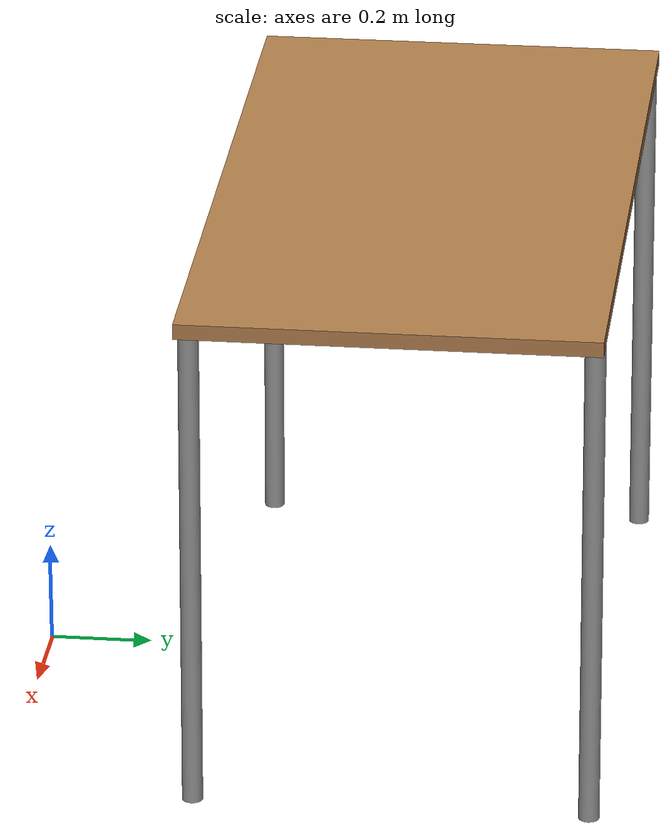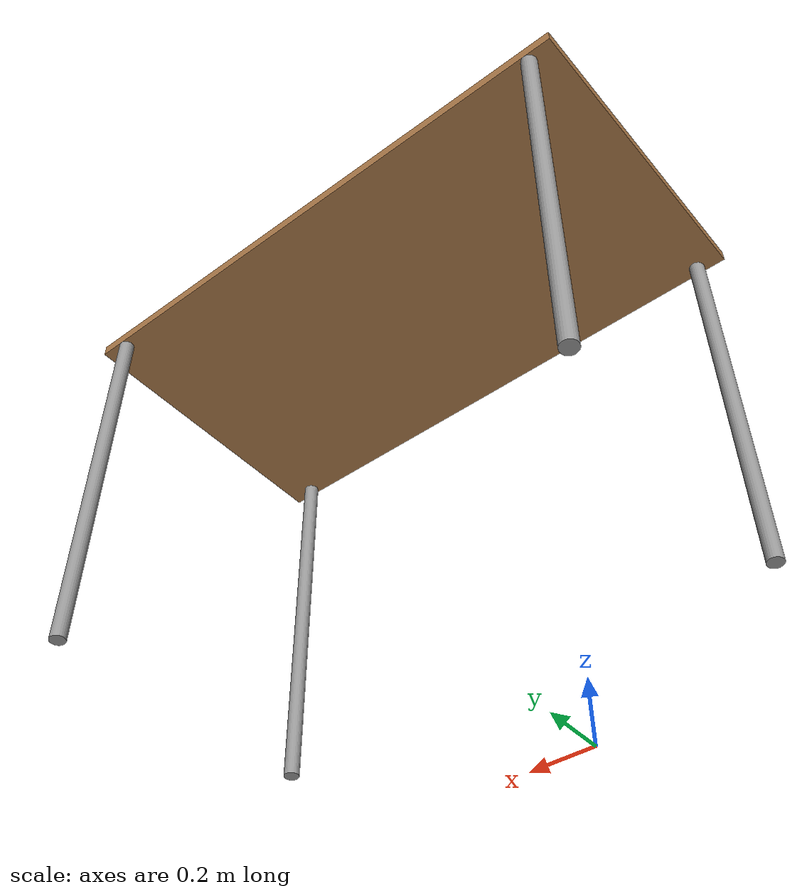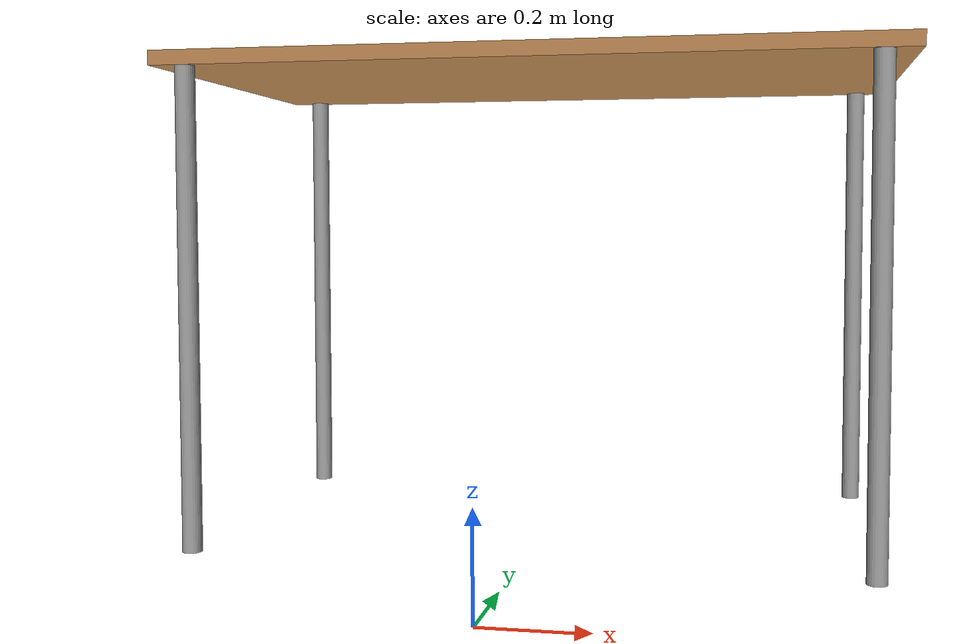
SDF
<?xml version='1.0'?>
<sdf version='1.5'>
  <model name='table'>

    <joint name="fixed_joint" type="fixed">
      <parent>world</parent>
      <child>link</child>
    </joint>

    <link name='link'>
      <pose frame=''>0 0.75 0 0 -0 0</pose>
      <self_collide>0</self_collide>
      <gravity>1</gravity>
      <inertial>
        <mass>1</mass>
        <pose frame=''>0 0 0 0 -0 0</pose>
        <inertia>
          <ixx>1</ixx>
          <ixy>0</ixy>
          <ixz>0</ixz>
          <iyy>1</iyy>
          <iyz>0</iyz>
          <izz>1</izz>
        </inertia>
      </inertial>
      <visual name='visual1'>
        <pose frame=''>0 0 1 0 -0 0</pose>
        <geometry>
          <box>
            <size>1.5 0.8 0.03</size>
          </box>
        </geometry>
        <material>
          <script>
            <uri>file://media/materials/scripts/gazebo.material</uri>
            <name>Gazebo/Wood</name>
          </script>
          <ambient>1 1 1 1</ambient>
          <diffuse>1 1 1 1</diffuse>
          <specular>0.2 0.2 0.2 1</specular>
          <emissive>0 0 0 1</emissive>
          <shader type='vertex'>
            <normal_map>__default__</normal_map>
          </shader>
        </material>
        <cast_shadows>1</cast_shadows>
        <transparency>0</transparency>
      </visual>
      <visual name='front_left_leg'>
        <pose frame=''>0.68 0.38 0.5 0 -0 0</pose>
        <geometry>
          <cylinder>
            <radius>0.02</radius>
            <length>1</length>
          </cylinder>
        </geometry>
        <material>
          <script>
            <uri>file://media/materials/scripts/gazebo.material</uri>
            <name>Gazebo/Grey</name>
          </script>
          <ambient>0.3 0.3 0.3 1</ambient>
          <diffuse>0.7 0.7 0.7 1</diffuse>
          <specular>0.01 0.01 0.01 1</specular>
          <emissive>0 0 0 1</emissive>
          <shader type='vertex'>
            <normal_map>__default__</normal_map>
          </shader>
        </material>
        <cast_shadows>1</cast_shadows>
        <transparency>0</transparency>
      </visual>
      <visual name='front_right_leg'>
        <pose frame=''>0.68 -0.38 0.5 0 -0 0</pose>
        <geometry>
          <cylinder>
            <radius>0.02</radius>
            <length>1</length>
          </cylinder>
        </geometry>
        <material>
          <script>
            <uri>file://media/materials/scripts/gazebo.material</uri>
            <name>Gazebo/Grey</name>
          </script>
          <ambient>0.3 0.3 0.3 1</ambient>
          <diffuse>0.7 0.7 0.7 1</diffuse>
          <specular>0.01 0.01 0.01 1</specular>
          <emissive>0 0 0 1</emissive>
          <shader type='vertex'>
            <normal_map>__default__</normal_map>
          </shader>
        </material>
        <cast_shadows>1</cast_shadows>
        <transparency>0</transparency>
      </visual>
      <visual name='back_right_leg'>
        <pose frame=''>-0.68 -0.38 0.5 0 -0 0</pose>
        <geometry>
          <cylinder>
            <radius>0.02</radius>
            <length>1</length>
          </cylinder>
        </geometry>
        <material>
          <script>
            <uri>file://media/materials/scripts/gazebo.material</uri>
            <name>Gazebo/Grey</name>
          </script>
          <ambient>0.3 0.3 0.3 1</ambient>
          <diffuse>0.7 0.7 0.7 1</diffuse>
          <specular>0.01 0.01 0.01 1</specular>
          <emissive>0 0 0 1</emissive>
          <shader type='vertex'>
            <normal_map>__default__</normal_map>
          </shader>
        </material>
        <cast_shadows>1</cast_shadows>
        <transparency>0</transparency>
      </visual>
      <visual name='back_left_leg'>
        <pose frame=''>-0.68 0.38 0.5 0 -0 0</pose>
        <geometry>
          <cylinder>
            <radius>0.02</radius>
            <length>1</length>
          </cylinder>
        </geometry>
        <material>
          <script>
            <uri>file://media/materials/scripts/gazebo.material</uri>
            <name>Gazebo/Grey</name>
          </script>
          <ambient>0.3 0.3 0.3 1</ambient>
          <diffuse>0.7 0.7 0.7 1</diffuse>
          <specular>0.01 0.01 0.01 1</specular>
          <emissive>0 0 0 1</emissive>
          <shader type='vertex'>
            <normal_map>__default__</normal_map>
          </shader>
        </material>
        <cast_shadows>1</cast_shadows>
        <transparency>0</transparency>
      </visual>
      <collision name='surface'>
        <laser_retro>0</laser_retro>
        <max_contacts>10</max_contacts>
        <pose frame=''>0 0 1 0 -0 0</pose>
        <geometry>
          <box>
            <size>1.5 0.8 0.03</size>
          </box>
        </geometry>
        <surface>
          <friction>
            <ode>
              <mu>0</mu>
              <mu2>0</mu2>
              <fdir1>0 0 0</fdir1>
             p <slip1>0</slip1>
              <slip2>0</slip2>
            </ode>
          </friction>
          <bounce>
            <restitution_coefficient>0</restitution_coefficient>
            <threshold>1e+06</threshold>
          </bounce>
          <contact>
            <collide_without_contact>0</collide_without_contact>
            <collide_without_contact_bitmask>1</collide_without_contact_bitmask>
            <collide_bitmask>1</collide_bitmask>
            <ode>
              <soft_cfm>0</soft_cfm>
              <soft_erp>0.2</soft_erp>
              <kp>10000</kp>
              <kd>1</kd>
              <max_vel>0.01</max_vel>
              <min_depth>0</min_depth>
            </ode>
            <bullet>
              <split_impulse>1</split_impulse>
              <split_impulse_penetration_threshold>-0.01</split_impulse_penetration_threshold>
              <soft_cfm>0</soft_cfm>
              <soft_erp>0.2</soft_erp>
              <kp>10000</kp>
              <kd>1</kd>
            </bullet>
          </contact>
        </surface>
      </collision>
      <collision name='front_left_leg_0'>
        <laser_retro>0</laser_retro>
        <max_contacts>10</max_contacts>
        <pose frame=''>0.68 0.38 0.5 0 -0 0</pose>
        <geometry>
          <cylinder>
            <radius>0.02</radius>
            <length>1</length>
          </cylinder>
        </geometry>
        <surface>
          <friction>
            <ode>
              <mu>1</mu>
              <mu2>1</mu2>
              <fdir1>0 0 0</fdir1>
              <slip1>0</slip1>
              <slip2>0</slip2>
            </ode>
          </friction>
          <bounce>
            <restitution_coefficient>0</restitution_coefficient>
            <threshold>1e+06</threshold>
          </bounce>
          <contact>
            <collide_without_contact>0</collide_without_contact>
            <collide_without_contact_bitmask>1</collide_without_contact_bitmask>
            <collide_bitmask>1</collide_bitmask>
            <ode>
              <soft_cfm>0</soft_cfm>
              <soft_erp>0.2</soft_erp>
              <kp>1e+13</kp>
              <kd>1</kd>
              <max_vel>0.01</max_vel>
              <min_depth>0</min_depth>
            </ode>
            <bullet>
              <split_impulse>1</split_impulse>
              <split_impulse_penetration_threshold>-0.01</split_impulse_penetration_threshold>
              <soft_cfm>0</soft_cfm>
              <soft_erp>0.2</soft_erp>
              <kp>1e+13</kp>
              <kd>1</kd>
            </bullet>
          </contact>
        </surface>
      </collision>
      <collision name='front_right_leg_0'>
        <laser_retro>0</laser_retro>
        <max_contacts>10</max_contacts>
        <pose frame=''>0.68 -0.38 0.5 0 -0 0</pose>
        <geometry>
          <cylinder>
            <radius>0.02</radius>
            <length>1</length>
          </cylinder>
        </geometry>
        <surface>
          <friction>
            <ode>
              <mu>1</mu>
              <mu2>1</mu2>
              <fdir1>0 0 0</fdir1>
              <slip1>0</slip1>
              <slip2>0</slip2>
            </ode>
          </friction>
          <bounce>
            <restitution_coefficient>0</restitution_coefficient>
            <threshold>1e+06</threshold>
          </bounce>
          <contact>
            <collide_without_contact>0</collide_without_contact>
            <collide_without_contact_bitmask>1</collide_without_contact_bitmask>
            <collide_bitmask>1</collide_bitmask>
            <ode>
              <soft_cfm>0</soft_cfm>
              <soft_erp>0.2</soft_erp>
              <kp>1e+13</kp>
              <kd>1</kd>
              <max_vel>0.01</max_vel>
              <min_depth>0</min_depth>
            </ode>
            <bullet>
              <split_impulse>1</split_impulse>
              <split_impulse_penetration_threshold>-0.01</split_impulse_penetration_threshold>
              <soft_cfm>0</soft_cfm>
              <soft_erp>0.2</soft_erp>
              <kp>1e+13</kp>
              <kd>1</kd>
            </bullet>
          </contact>
        </surface>
      </collision>
      <collision name='back_left_leg_0'>
        <laser_retro>0</laser_retro>
        <max_contacts>10</max_contacts>
        <pose frame=''>-0.68 0.38 0.5 0 -0 0</pose>
        <geometry>
          <cylinder>
            <radius>0.02</radius>
            <length>1</length>
          </cylinder>
        </geometry>
        <surface>
          <friction>
            <ode>
              <mu>1</mu>
              <mu2>1</mu2>
              <fdir1>0 0 0</fdir1>
              <slip1>0</slip1>
              <slip2>0</slip2>
            </ode>
          </friction>
          <bounce>
            <restitution_coefficient>0</restitution_coefficient>
            <threshold>1e+06</threshold>
          </bounce>
          <contact>
            <collide_without_contact>0</collide_without_contact>
            <collide_without_contact_bitmask>1</collide_without_contact_bitmask>
            <collide_bitmask>1</collide_bitmask>
            <ode>
              <soft_cfm>0</soft_cfm>
              <soft_erp>0.2</soft_erp>
              <kp>1e+13</kp>
              <kd>1</kd>
              <max_vel>0.01</max_vel>
              <min_depth>0</min_depth>
            </ode>
            <bullet>
              <split_impulse>1</split_impulse>
              <split_impulse_penetration_threshold>-0.01</split_impulse_penetration_threshold>
              <soft_cfm>0</soft_cfm>
              <soft_erp>0.2</soft_erp>
              <kp>1e+13</kp>
              <kd>1</kd>
            </bullet>
          </contact>
        </surface>
      </collision>
      <collision name='back_right_leg_0'>
        <laser_retro>0</laser_retro>
        <max_contacts>10</max_contacts>
        <pose frame=''>-0.68 -0.38 0.5 0 -0 0</pose>
        <geometry>
          <cylinder>
            <radius>0.02</radius>
            <length>1</length>
          </cylinder>
        </geometry>
        <surface>
          <friction>
            <ode>
              <mu>1</mu>
              <mu2>1</mu2>
              <fdir1>0 0 0</fdir1>
              <slip1>0</slip1>
              <slip2>0</slip2>
            </ode>
          </friction>
          <bounce>
            <restitution_coefficient>0</restitution_coefficient>
            <threshold>1e+06</threshold>
          </bounce>
          <contact>
            <collide_without_contact>0</collide_without_contact>
            <collide_without_contact_bitmask>1</collide_without_contact_bitmask>
            <collide_bitmask>1</collide_bitmask>
            <ode>
              <soft_cfm>0</soft_cfm>
              <soft_erp>0.2</soft_erp>
              <kp>1e+13</kp>
              <kd>1</kd>
              <max_vel>0.01</max_vel>
              <min_depth>0</min_depth>
            </ode>
            <bullet>
              <split_impulse>1</split_impulse>
              <split_impulse_penetration_threshold>-0.01</split_impulse_penetration_threshold>
              <soft_cfm>0</soft_cfm>
              <soft_erp>0.2</soft_erp>
              <kp>1e+13</kp>
              <kd>1</kd>
            </bullet>
          </contact>
        </surface>
      </collision>
    </link>
    <allow_auto_disable>1</allow_auto_disable>
  </model>
</sdf>
